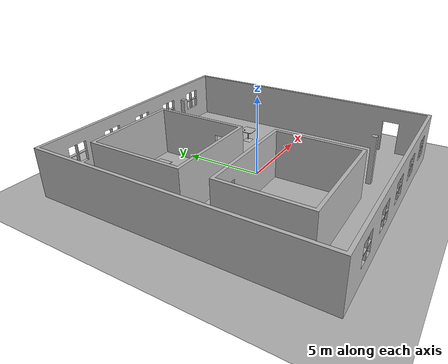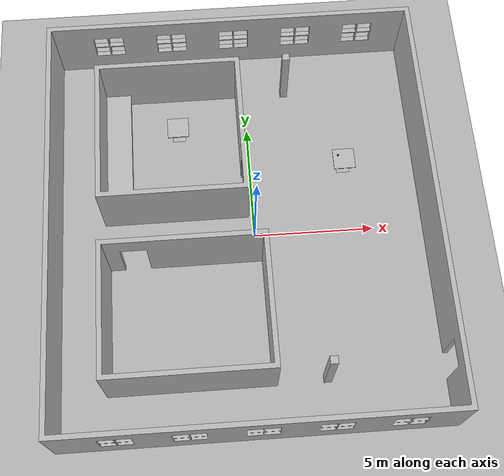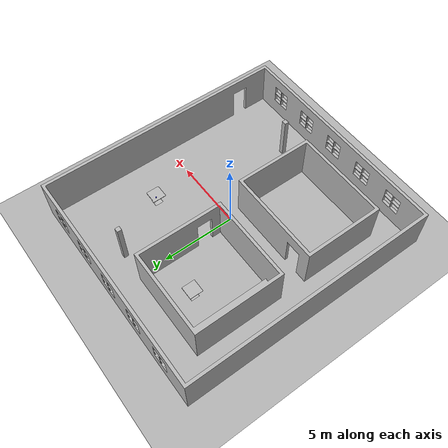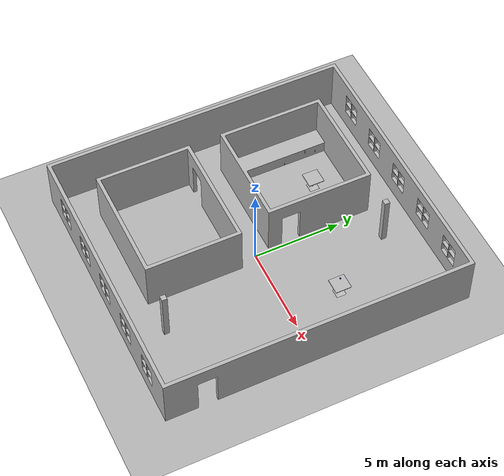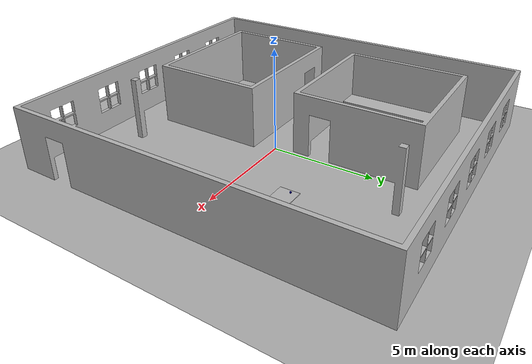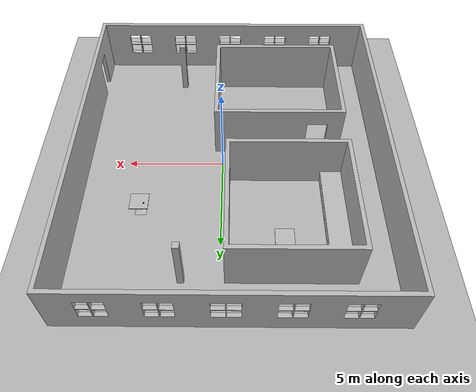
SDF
<?xml version="1.0" ?>
<sdf version="1.9">
  <world name="test_zone">
    <physics name="1ms" type="ignored">
      <max_step_size>0.001</max_step_size>
      <real_time_factor>1.0</real_time_factor>
    </physics>

    <plugin filename="gz-sim-physics-system" name="gz::sim::systems::Physics">
    </plugin>
    <plugin filename="gz-sim-user-commands-system" name="gz::sim::systems::UserCommands">
    </plugin>
    <plugin filename="gz-sim-scene-broadcaster-system" name="gz::sim::systems::SceneBroadcaster">
    </plugin>
    <plugin filename="gz-sim-contact-system" name="gz::sim::systems::Contact">
    </plugin>
    <plugin filename="gz-sim-imu-system" name="gz::sim::systems::Imu">
    </plugin>
    <plugin filename="gz-sim-sensors-system" name="gz::sim::systems::Sensors">
      <render_engine>ogre2</render_engine>
    </plugin>

    <light type="directional" name="sun">
      <cast_shadows>true</cast_shadows>
      <pose>0 0 10 0 0 0</pose>
      <diffuse>0.8 0.8 0.8 1</diffuse>
      <specular>0.2 0.2 0.2 1</specular>
      <direction>-0.5 0.1 -0.9</direction>
    </light>

    <model name="ground_plane">
      <static>true</static>
      <link name="link">
        <collision name="collision">
          <geometry>
            <plane>
              <normal>0 0 1</normal>
              <size>200 200</size>
            </plane>
          </geometry>
        </collision>
        <visual name="visual">
          <geometry>
            <plane>
              <normal>0 0 1</normal>
              <size>200 200</size>
            </plane>
          </geometry>
          <material>
            <ambient>0.5 0.5 0.5 1</ambient>
            <diffuse>0.7 0.7 0.7 1</diffuse>
            <specular>0 0 0 1</specular>
          </material>
        </visual>
      </link>
    </model>

    <include>
      <uri>model://test_zone</uri>
    </include>

    <include>
      <uri>model://cafe_table</uri>
      <name>table1</name>
      <pose>4.05 3 0 0 0 1.57</pose>
    </include>

    <include>
      <uri>model://cafe_table</uri>
      <name>table2</name>
      <pose>-3 5 0 0 0 1.57</pose>
    </include>

    <include>
      <uri>model://demo_cube</uri>
      <pose>3.8 3.15 0.83 0 0 0</pose>
    </include>
  </world>
</sdf>

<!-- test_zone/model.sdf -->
<sdf version="1.6">
  <model name="test_zone">
    <static>true</static>
    <link name="link">
      <inertial>
        <pose>-8.12 8.8 0 1.57 0 0</pose>
        <mass>100</mass>
        <inertia>
          <ixx>10</ixx><ixy>0</ixy><ixz>0</ixz>
          <iyy>10</iyy><iyz>0</iyz>
          <izz>10</izz>
        </inertia>
      </inertial>
      <collision name="collision">
        <pose>-8.12 8.8 0 1.57 0 0</pose>
        <geometry>
          <mesh>
            <uri>model://test_zone/meshes/building.dae</uri>
          </mesh>
        </geometry>
      </collision>
      <visual name="visual">
        <pose>-8.12 8.8 0 1.57 0 0</pose>
        <geometry>
          <mesh>
            <uri>model://test_zone/meshes/building.dae</uri>
          </mesh>
        </geometry>
      </visual>
    </link>
  </model>
</sdf>

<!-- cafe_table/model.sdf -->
<sdf version="1.5">
  <model name="cafe_table">
    <static>true</static>
    <link name="link">
      <collision name="surface">
        <pose>0 0 0.755 0 0 0</pose>
        <geometry>
          <box>
            <size>0.913 0.913 0.04</size>
          </box>
        </geometry>
      </collision>

      <collision name="column">
        <pose>0 0 0.37 0 0 0</pose>
        <geometry>
          <box>
            <size>0.042 0.042 0.74</size>
          </box>
        </geometry>
      </collision>

      <collision name="base">
        <pose>0 0 0.02 0 0 0</pose>
        <geometry>
          <box>
            <size>0.56 0.56 0.04</size>
          </box>
        </geometry>
      </collision>

      <visual name="visual">
        <geometry>
          <mesh>
            <uri>model://cafe_table/meshes/cafe_table.dae</uri>
          </mesh>
        </geometry>
      </visual>
    </link>
  </model>
</sdf>

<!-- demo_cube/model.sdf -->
<sdf version='1.6'>
  <model name="demo_cube">
      <static>0</static>
      <link name='link'>
        <inertial>
          <pose>0 0 0 0 0 0</pose>
          <mass>0.25</mass>
          <inertia>
            <ixx>0.00015</ixx>
            <ixy>0</ixy>
            <ixz>0</ixz>
            <iyy>0.00015</iyy>
            <iyz>0</iyz>
            <izz>0.00015</izz>
          </inertia>
        </inertial>
        <collision name='collision'>
          <geometry>
            <box>
              <size>0.060 0.060 0.060</size>
            </box>
          </geometry>
        </collision>
        <visual name='visual'>
          <geometry>
            <box>
              <size>0.060 0.060 0.060</size>
            </box>
          </geometry>
          <material>
            <ambient>0.0 0.0 0.8 1</ambient>
            <diffuse>0.0 0.0 0.8 1</diffuse>
            <specular>0.1 0.1 0.1 1</specular>
          </material>
        </visual>
      </link>
  </model>
</sdf>
